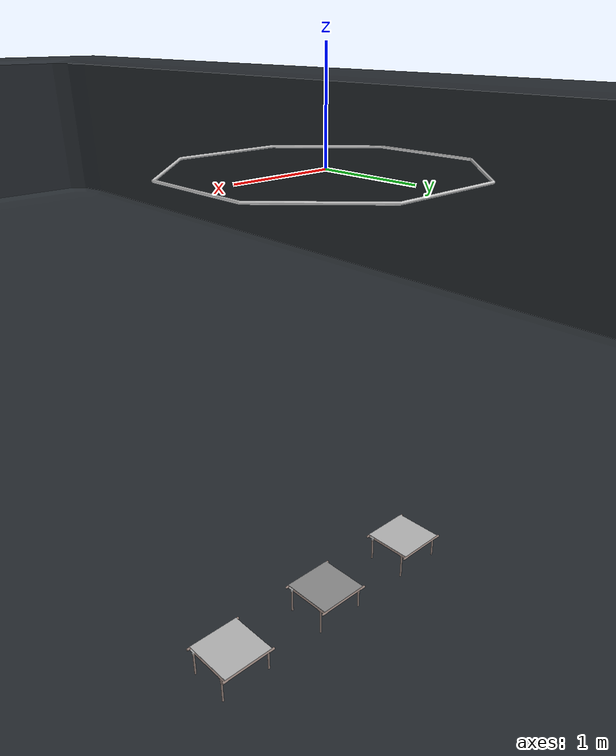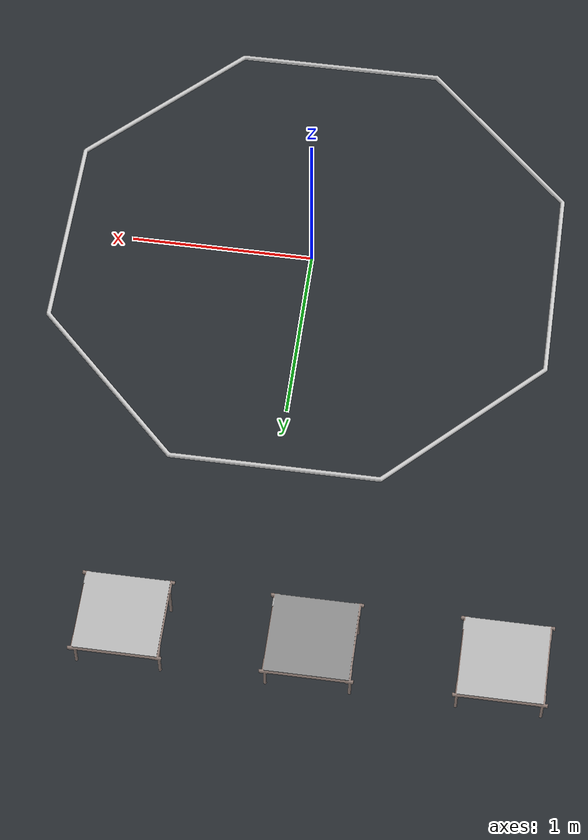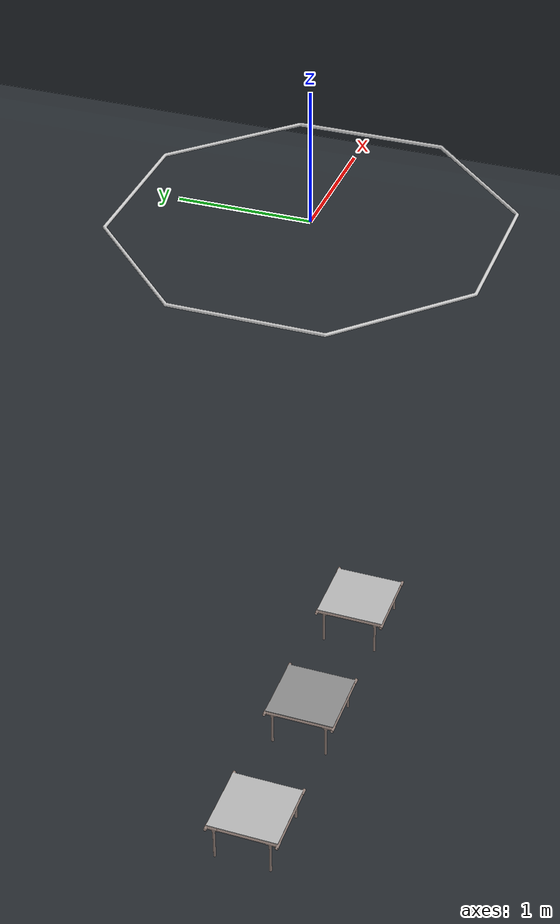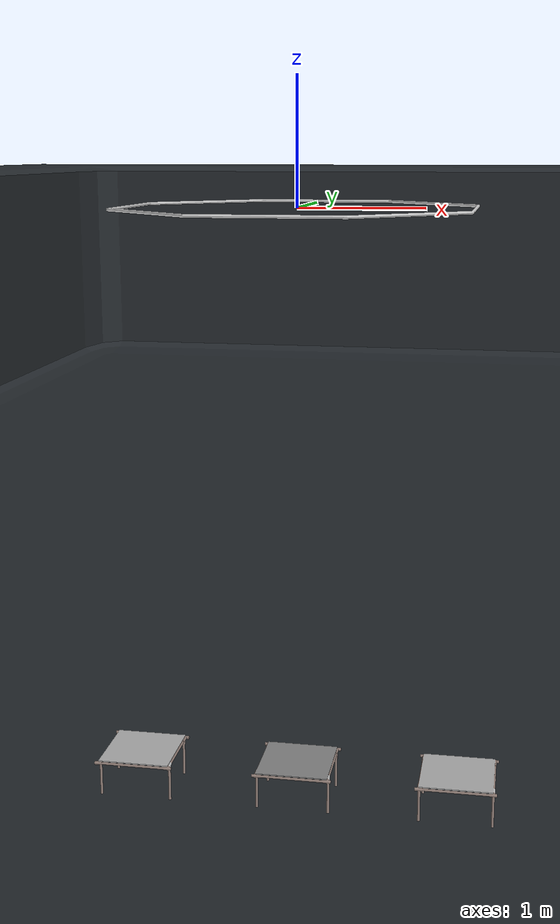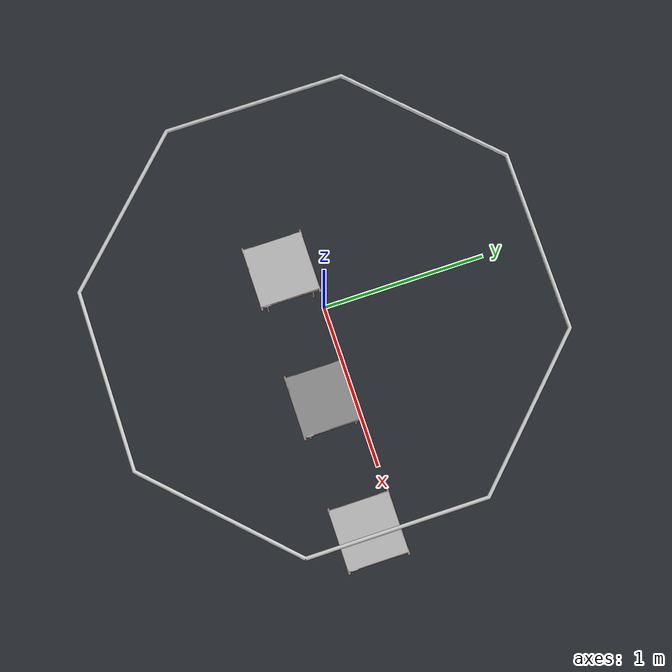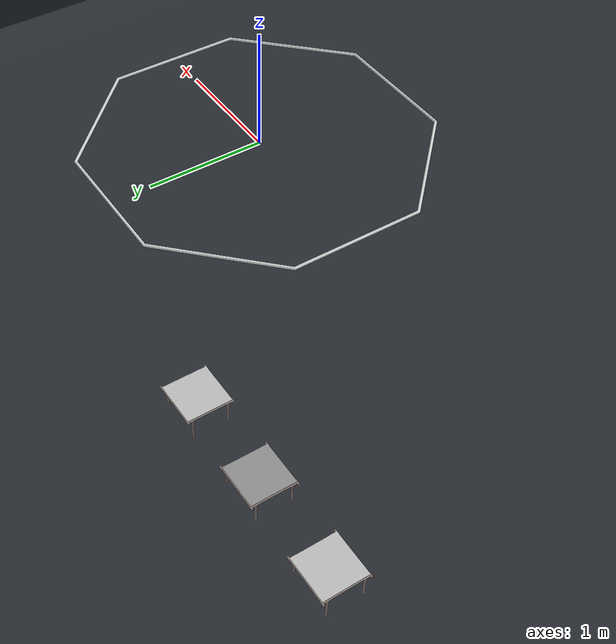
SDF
<?xml version="1.0" ?>
<sdf version="1.9">
    <world name="task_octagon">
        <light type="directional" name="sun">
            <cast_shadows>true</cast_shadows>
            <pose>0 0 10 0 0 0</pose>
            <diffuse>0.8 0.8 0.8 1</diffuse>
            <specular>0.2 0.2 0.2 1</specular>
            <attenuation>
                <range>1000</range>
                <constant>0.9</constant>
                <linear>0.01</linear>
                <quadratic>0.001</quadratic>
            </attenuation>
            <direction>-0.5 0.1 -0.9</direction>
        </light>

        <model name="simple_pool">
            <static>true</static>
            <link name="simple_pool">
                <visual name="pool_visual">
                    <geometry>
                        <mesh>
                            <uri>../../../assets/common/simple_pool/simple_pool.dae</uri>
                        </mesh>
                    </geometry>
                </visual>
                <collision name="pool_collision">
                    <geometry>
                        <mesh>
                            <uri>../../../assets/common/simple_pool/simple_pool.dae</uri>
                        </mesh>
                    </geometry>
                </collision>
            </link>
        </model>

        <model name="octagon">
            <static>true</static>
            <link name="octagon">
                <pose>0 0 0 0 0 0</pose>
                <visual name="octagon_visual">
                    <geometry>
                        <mesh>
                            <uri>../../../assets/robosub2022/octagon/octagon.dae</uri>
                        </mesh>
                    </geometry>
                </visual>
                <collision name="octagon_collision">
                    <geometry>
                        <mesh>
                            <uri>../../../assets/robosub2022/octagon/octagon.dae</uri>
                        </mesh>
                    </geometry>
                </collision>
            </link>
        </model>

        <model name="table_gman">
            <static>true</static>
            <link name="table_gman">
                <pose>-1.3716 0 -5 0 0 0</pose>
                <visual name="table_gman_visual">
                    <geometry>
                        <mesh>
                            <uri>../../../assets/robosub2022/octagon/table_gman.dae</uri>
                        </mesh>
                    </geometry>
                </visual>
                <collision name="table_gman_collision">
                    <geometry>
                        <mesh>
                            <uri>../../../assets/robosub2022/octagon/table_gman.dae</uri>
                        </mesh>
                    </geometry>
                </collision>
            </link>
        </model>

        <model name="table_bootlegger">
            <static>true</static>
            <link name="table_bootlegger">
                <pose>1.3716 0 -5 0 0 0</pose>
                <visual name="table_bootlegger_visual">
                    <geometry>
                        <mesh>
                            <uri>../../../assets/robosub2022/octagon/table_bootlegger.dae</uri>
                        </mesh>
                    </geometry>
                </visual>
                <collision name="table_bootlegger_collision">
                    <geometry>
                        <mesh>
                            <uri>../../../assets/robosub2022/octagon/table_bootlegger.dae</uri>
                        </mesh>
                    </geometry>
                </collision>
            </link>
        </model>

        <model name="table_bottles">
            <static>true</static>
            <link name="table_bottles">
                <pose>0 0 -5 0 0 0</pose>
                <visual name="table_bottles_visual">
                    <geometry>
                        <mesh>
                            <uri>../../../assets/robosub2022/octagon/table_bottles.dae</uri>
                        </mesh>
                    </geometry>
                </visual>
                <collision name="table_bottles_collision">
                    <geometry>
                        <mesh>
                            <uri>../../../assets/robosub2022/octagon/table_bottles.dae</uri>
                        </mesh>
                    </geometry>
                </collision>
            </link>
        </model>

    </world>
</sdf>
